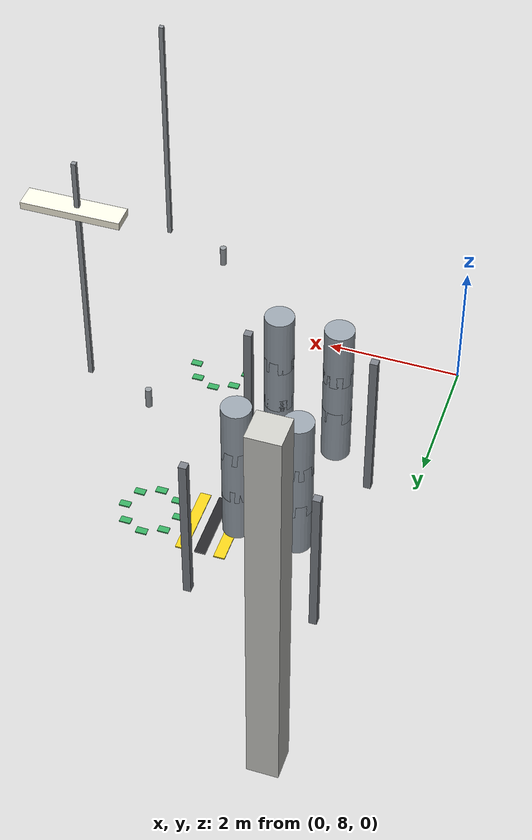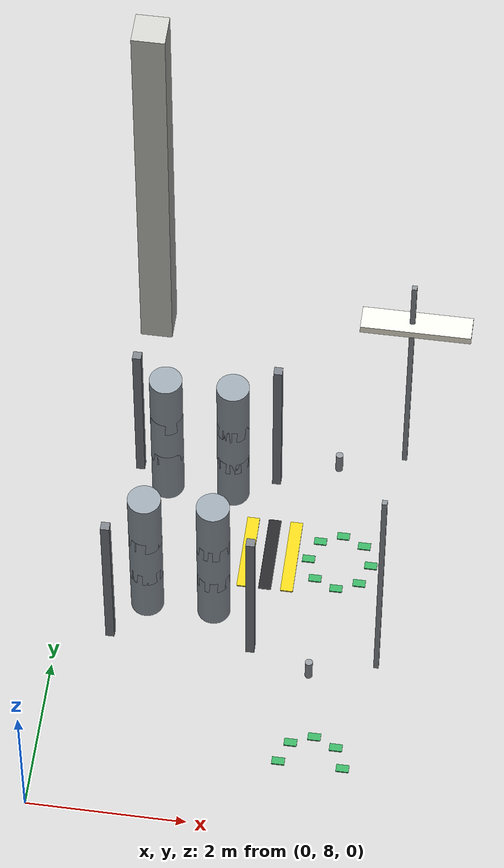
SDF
<sdf version="1.10">
 <world name="textile_mill">
  <model name="col_1">
   <static>true</static>
   <pose>0.550 15.450 3.000 0 0 0</pose>
   <link name="l">
    <collision name="c"><geometry><box><size>0.420 0.420 6.000</size></box></geometry></collision>
    <visual name="v">
     <geometry><box><size>0.420 0.420 6.000</size></box></geometry>
     <material>
      <ambient>0.800 0.800 0.780 1.0</ambient>
      <diffuse>0.800 0.800 0.780 1.0</diffuse>
      <specular>0.18 0.18 0.18 1</specular>
      <pbr><metal><roughness>0.85</roughness><metalness>0.0</metalness></metal></pbr>
     </material>
    </visual>
   </link>
  </model>
  <model name="lamp_0_2">
   <static>true</static>
   <pose>4.200 12.000 5.280 0 0 0</pose>
   <link name="l">
    <collision name="c"><geometry><box><size>1.300 0.300 0.100</size></box></geometry></collision>
    <visual name="v">
     <geometry><box><size>1.300 0.300 0.100</size></box></geometry>
     <material>
      <ambient>1.000 0.980 0.900 1.0</ambient>
      <diffuse>1.000 0.980 0.900 1.0</diffuse>
      <specular>0.18 0.18 0.18 1</specular>
      <pbr><metal><roughness>0.3</roughness><metalness>0.0</metalness></metal></pbr>
     </material>
    </visual>
   </link>
  </model>
  <model name="clnz_carding_2_0">
   <static>true</static>
   <pose>3.350 9.000 2.280 0.0000 0.0000 0.0000</pose>
   <link name="l">
    <collision name="c">
     <geometry><cylinder><radius>0.045</radius><length>0.300</length></cylinder></geometry>
    </collision>
    <visual name="v">
     <geometry><cylinder><radius>0.045</radius><length>0.300</length></cylinder></geometry>
     <material>
      <ambient>0.580 0.600 0.620 1.0</ambient>
      <diffuse>0.580 0.600 0.620 1.0</diffuse>
      <specular>0.18 0.18 0.18 1</specular>
      <pbr><metal><roughness>0.35</roughness><metalness>0.5</metalness></metal></pbr>
     </material>
    </visual>
   </link>
  </model>
  <model name="clnh_carding_2_0">
   <static>true</static>
   <pose>4.150 9.000 4.260 0 0 0</pose>
   <link name="l">
    <collision name="c"><geometry><box><size>0.060 0.060 3.480</size></box></geometry></collision>
    <visual name="v">
     <geometry><box><size>0.060 0.060 3.480</size></box></geometry>
     <material>
      <ambient>0.550 0.570 0.590 1.0</ambient>
      <diffuse>0.550 0.570 0.590 1.0</diffuse>
      <specular>0.18 0.18 0.18 1</specular>
      <pbr><metal><roughness>0.65</roughness><metalness>0.6</metalness></metal></pbr>
     </material>
    </visual>
   </link>
  </model>
  <model name="clnz_carding_3_0">
   <static>true</static>
   <pose>3.350 12.000 2.280 0.0000 0.0000 0.0000</pose>
   <link name="l">
    <collision name="c">
     <geometry><cylinder><radius>0.045</radius><length>0.300</length></cylinder></geometry>
    </collision>
    <visual name="v">
     <geometry><cylinder><radius>0.045</radius><length>0.300</length></cylinder></geometry>
     <material>
      <ambient>0.580 0.600 0.620 1.0</ambient>
      <diffuse>0.580 0.600 0.620 1.0</diffuse>
      <specular>0.18 0.18 0.18 1</specular>
      <pbr><metal><roughness>0.35</roughness><metalness>0.5</metalness></metal></pbr>
     </material>
    </visual>
   </link>
  </model>
  <model name="clnh_carding_3_0">
   <static>true</static>
   <pose>4.150 12.000 4.260 0 0 0</pose>
   <link name="l">
    <collision name="c"><geometry><box><size>0.060 0.060 3.480</size></box></geometry></collision>
    <visual name="v">
     <geometry><box><size>0.060 0.060 3.480</size></box></geometry>
     <material>
      <ambient>0.550 0.570 0.590 1.0</ambient>
      <diffuse>0.550 0.570 0.590 1.0</diffuse>
      <specular>0.18 0.18 0.18 1</specular>
      <pbr><metal><roughness>0.65</roughness><metalness>0.6</metalness></metal></pbr>
     </material>
    </visual>
   </link>
  </model>
  <model name="slot_storage_empty_slot_2_0">
   <static>true</static>
   <pose>3.800 9.000 0.012 0 0 0</pose>
   <link name="l">
    <visual name="v">
     <geometry><box><size>0.160 0.100 0.020</size></box></geometry>
     <material>
      <ambient>0.220 0.680 0.380 1.0</ambient>
      <diffuse>0.220 0.680 0.380 1.0</diffuse>
      <specular>0.18 0.18 0.18 1</specular>
      <pbr><metal><roughness>0.65</roughness><metalness>0.0</metalness></metal></pbr>
     </material>
    </visual>
   </link>
  </model>
  <model name="slot_storage_empty_slot_2_1">
   <static>true</static>
   <pose>3.683 9.283 0.012 0 0 0</pose>
   <link name="l">
    <visual name="v">
     <geometry><box><size>0.160 0.100 0.020</size></box></geometry>
     <material>
      <ambient>0.220 0.680 0.380 1.0</ambient>
      <diffuse>0.220 0.680 0.380 1.0</diffuse>
      <specular>0.18 0.18 0.18 1</specular>
      <pbr><metal><roughness>0.65</roughness><metalness>0.0</metalness></metal></pbr>
     </material>
    </visual>
   </link>
  </model>
  <model name="slot_storage_empty_slot_2_2">
   <static>true</static>
   <pose>3.400 9.400 0.012 0 0 0</pose>
   <link name="l">
    <visual name="v">
     <geometry><box><size>0.160 0.100 0.020</size></box></geometry>
     <material>
      <ambient>0.220 0.680 0.380 1.0</ambient>
      <diffuse>0.220 0.680 0.380 1.0</diffuse>
      <specular>0.18 0.18 0.18 1</specular>
      <pbr><metal><roughness>0.65</roughness><metalness>0.0</metalness></metal></pbr>
     </material>
    </visual>
   </link>
  </model>
  <model name="slot_storage_empty_slot_2_3">
   <static>true</static>
   <pose>3.117 9.283 0.012 0 0 0</pose>
   <link name="l">
    <visual name="v">
     <geometry><box><size>0.160 0.100 0.020</size></box></geometry>
     <material>
      <ambient>0.220 0.680 0.380 1.0</ambient>
      <diffuse>0.220 0.680 0.380 1.0</diffuse>
      <specular>0.18 0.18 0.18 1</specular>
      <pbr><metal><roughness>0.65</roughness><metalness>0.0</metalness></metal></pbr>
     </material>
    </visual>
   </link>
  </model>
  <model name="slot_storage_empty_slot_2_4">
   <static>true</static>
   <pose>3.000 9.000 0.012 0 0 0</pose>
   <link name="l">
    <visual name="v">
     <geometry><box><size>0.160 0.100 0.020</size></box></geometry>
     <material>
      <ambient>0.220 0.680 0.380 1.0</ambient>
      <diffuse>0.220 0.680 0.380 1.0</diffuse>
      <specular>0.18 0.18 0.18 1</specular>
      <pbr><metal><roughness>0.65</roughness><metalness>0.0</metalness></metal></pbr>
     </material>
    </visual>
   </link>
  </model>
  <model name="slot_storage_empty_slot_3_0">
   <static>true</static>
   <pose>3.800 12.000 0.012 0 0 0</pose>
   <link name="l">
    <visual name="v">
     <geometry><box><size>0.160 0.100 0.020</size></box></geometry>
     <material>
      <ambient>0.220 0.680 0.380 1.0</ambient>
      <diffuse>0.220 0.680 0.380 1.0</diffuse>
      <specular>0.18 0.18 0.18 1</specular>
      <pbr><metal><roughness>0.65</roughness><metalness>0.0</metalness></metal></pbr>
     </material>
    </visual>
   </link>
  </model>
  <model name="slot_storage_empty_slot_3_1">
   <static>true</static>
   <pose>3.683 12.283 0.012 0 0 0</pose>
   <link name="l">
    <visual name="v">
     <geometry><box><size>0.160 0.100 0.020</size></box></geometry>
     <material>
      <ambient>0.220 0.680 0.380 1.0</ambient>
      <diffuse>0.220 0.680 0.380 1.0</diffuse>
      <specular>0.18 0.18 0.18 1</specular>
      <pbr><metal><roughness>0.65</roughness><metalness>0.0</metalness></metal></pbr>
     </material>
    </visual>
   </link>
  </model>
  <model name="slot_storage_empty_slot_3_2">
   <static>true</static>
   <pose>3.400 12.400 0.012 0 0 0</pose>
   <link name="l">
    <visual name="v">
     <geometry><box><size>0.160 0.100 0.020</size></box></geometry>
     <material>
      <ambient>0.220 0.680 0.380 1.0</ambient>
      <diffuse>0.220 0.680 0.380 1.0</diffuse>
      <specular>0.18 0.18 0.18 1</specular>
      <pbr><metal><roughness>0.65</roughness><metalness>0.0</metalness></metal></pbr>
     </material>
    </visual>
   </link>
  </model>
  <model name="slot_storage_empty_slot_3_3">
   <static>true</static>
   <pose>3.117 12.283 0.012 0 0 0</pose>
   <link name="l">
    <visual name="v">
     <geometry><box><size>0.160 0.100 0.020</size></box></geometry>
     <material>
      <ambient>0.220 0.680 0.380 1.0</ambient>
      <diffuse>0.220 0.680 0.380 1.0</diffuse>
      <specular>0.18 0.18 0.18 1</specular>
      <pbr><metal><roughness>0.65</roughness><metalness>0.0</metalness></metal></pbr>
     </material>
    </visual>
   </link>
  </model>
  <model name="slot_storage_empty_slot_3_4">
   <static>true</static>
   <pose>3.000 12.000 0.012 0 0 0</pose>
   <link name="l">
    <visual name="v">
     <geometry><box><size>0.160 0.100 0.020</size></box></geometry>
     <material>
      <ambient>0.220 0.680 0.380 1.0</ambient>
      <diffuse>0.220 0.680 0.380 1.0</diffuse>
      <specular>0.18 0.18 0.18 1</specular>
      <pbr><metal><roughness>0.65</roughness><metalness>0.0</metalness></metal></pbr>
     </material>
    </visual>
   </link>
  </model>
  <model name="slot_storage_empty_slot_3_5">
   <static>true</static>
   <pose>3.117 11.717 0.012 0 0 0</pose>
   <link name="l">
    <visual name="v">
     <geometry><box><size>0.160 0.100 0.020</size></box></geometry>
     <material>
      <ambient>0.220 0.680 0.380 1.0</ambient>
      <diffuse>0.220 0.680 0.380 1.0</diffuse>
      <specular>0.18 0.18 0.18 1</specular>
      <pbr><metal><roughness>0.65</roughness><metalness>0.0</metalness></metal></pbr>
     </material>
    </visual>
   </link>
  </model>
  <model name="slot_storage_empty_slot_3_6">
   <static>true</static>
   <pose>3.400 11.600 0.012 0 0 0</pose>
   <link name="l">
    <visual name="v">
     <geometry><box><size>0.160 0.100 0.020</size></box></geometry>
     <material>
      <ambient>0.220 0.680 0.380 1.0</ambient>
      <diffuse>0.220 0.680 0.380 1.0</diffuse>
      <specular>0.18 0.18 0.18 1</specular>
      <pbr><metal><roughness>0.65</roughness><metalness>0.0</metalness></metal></pbr>
     </material>
    </visual>
   </link>
  </model>
  <model name="slot_storage_empty_slot_3_7">
   <static>true</static>
   <pose>3.683 11.717 0.012 0 0 0</pose>
   <link name="l">
    <visual name="v">
     <geometry><box><size>0.160 0.100 0.020</size></box></geometry>
     <material>
      <ambient>0.220 0.680 0.380 1.0</ambient>
      <diffuse>0.220 0.680 0.380 1.0</diffuse>
      <specular>0.18 0.18 0.18 1</specular>
      <pbr><metal><roughness>0.65</roughness><metalness>0.0</metalness></metal></pbr>
     </material>
    </visual>
   </link>
  </model>
  <model name="hz_empty_3_0">
   <static>true</static>
   <pose>2.780 12.000 0.012 0 0 0</pose>
   <link name="l">
    <visual name="v">
     <geometry><box><size>0.160 1.050 0.020</size></box></geometry>
     <material>
      <ambient>0.950 0.820 0.100 1.0</ambient>
      <diffuse>0.950 0.820 0.100 1.0</diffuse>
      <specular>0.18 0.18 0.18 1</specular>
      <pbr><metal><roughness>0.65</roughness><metalness>0.0</metalness></metal></pbr>
     </material>
    </visual>
   </link>
  </model>
  <model name="hz_empty_3_1">
   <static>true</static>
   <pose>2.500 12.000 0.012 0 0 0</pose>
   <link name="l">
    <visual name="v">
     <geometry><box><size>0.160 1.050 0.020</size></box></geometry>
     <material>
      <ambient>0.150 0.150 0.160 1.0</ambient>
      <diffuse>0.150 0.150 0.160 1.0</diffuse>
      <specular>0.18 0.18 0.18 1</specular>
      <pbr><metal><roughness>0.65</roughness><metalness>0.0</metalness></metal></pbr>
     </material>
    </visual>
   </link>
  </model>
  <model name="hz_empty_3_2">
   <static>true</static>
   <pose>2.220 12.000 0.012 0 0 0</pose>
   <link name="l">
    <visual name="v">
     <geometry><box><size>0.160 1.050 0.020</size></box></geometry>
     <material>
      <ambient>0.950 0.820 0.100 1.0</ambient>
      <diffuse>0.950 0.820 0.100 1.0</diffuse>
      <specular>0.18 0.18 0.18 1</specular>
      <pbr><metal><roughness>0.65</roughness><metalness>0.0</metalness></metal></pbr>
     </material>
    </visual>
   </link>
  </model>
  <model name="rack_empty_can_0_4_a">
   <static>true</static>
   <pose>1.132 10.670 1.120 0.0000 0.0000 0.0000</pose>
   <link name="l">
    <collision name="c">
     <geometry><cylinder><radius>0.205</radius><length>0.900</length></cylinder></geometry>
    </collision>
    <visual name="v">
     <geometry><cylinder><radius>0.205</radius><length>0.900</length></cylinder></geometry>
     <material>
      <ambient>0.600 0.640 0.680 1.0</ambient>
      <diffuse>0.600 0.640 0.680 1.0</diffuse>
      <specular>0.18 0.18 0.18 1</specular>
      <pbr><metal><roughness>0.6</roughness><metalness>0.0</metalness></metal></pbr>
     </material>
    </visual>
   </link>
  </model>
  <model name="rack_empty_can_0_4_b">
   <static>true</static>
   <pose>1.968 10.670 1.120 0.0000 0.0000 0.0000</pose>
   <link name="l">
    <collision name="c">
     <geometry><cylinder><radius>0.205</radius><length>0.900</length></cylinder></geometry>
    </collision>
    <visual name="v">
     <geometry><cylinder><radius>0.205</radius><length>0.900</length></cylinder></geometry>
     <material>
      <ambient>0.600 0.640 0.680 1.0</ambient>
      <diffuse>0.600 0.640 0.680 1.0</diffuse>
      <specular>0.18 0.18 0.18 1</specular>
      <pbr><metal><roughness>0.6</roughness><metalness>0.0</metalness></metal></pbr>
     </material>
    </visual>
   </link>
  </model>
  <model name="rack_empty_can_0_5_a">
   <static>true</static>
   <pose>1.132 12.450 1.120 0.0000 0.0000 0.0000</pose>
   <link name="l">
    <collision name="c">
     <geometry><cylinder><radius>0.205</radius><length>0.900</length></cylinder></geometry>
    </collision>
    <visual name="v">
     <geometry><cylinder><radius>0.205</radius><length>0.900</length></cylinder></geometry>
     <material>
      <ambient>0.600 0.640 0.680 1.0</ambient>
      <diffuse>0.600 0.640 0.680 1.0</diffuse>
      <specular>0.18 0.18 0.18 1</specular>
      <pbr><metal><roughness>0.6</roughness><metalness>0.0</metalness></metal></pbr>
     </material>
    </visual>
   </link>
  </model>
  <model name="rack_empty_can_0_5_b">
   <static>true</static>
   <pose>1.968 12.450 1.120 0.0000 0.0000 0.0000</pose>
   <link name="l">
    <collision name="c">
     <geometry><cylinder><radius>0.205</radius><length>0.900</length></cylinder></geometry>
    </collision>
    <visual name="v">
     <geometry><cylinder><radius>0.205</radius><length>0.900</length></cylinder></geometry>
     <material>
      <ambient>0.600 0.640 0.680 1.0</ambient>
      <diffuse>0.600 0.640 0.680 1.0</diffuse>
      <specular>0.18 0.18 0.18 1</specular>
      <pbr><metal><roughness>0.6</roughness><metalness>0.0</metalness></metal></pbr>
     </material>
    </visual>
   </link>
  </model>
  <model name="rack_empty_can_1_4_a">
   <static>true</static>
   <pose>1.132 10.670 1.820 0.0000 0.0000 0.0000</pose>
   <link name="l">
    <collision name="c">
     <geometry><cylinder><radius>0.205</radius><length>0.900</length></cylinder></geometry>
    </collision>
    <visual name="v">
     <geometry><cylinder><radius>0.205</radius><length>0.900</length></cylinder></geometry>
     <material>
      <ambient>0.600 0.640 0.680 1.0</ambient>
      <diffuse>0.600 0.640 0.680 1.0</diffuse>
      <specular>0.18 0.18 0.18 1</specular>
      <pbr><metal><roughness>0.6</roughness><metalness>0.0</metalness></metal></pbr>
     </material>
    </visual>
   </link>
  </model>
  <model name="rack_empty_can_1_4_b">
   <static>true</static>
   <pose>1.968 10.670 1.820 0.0000 0.0000 0.0000</pose>
   <link name="l">
    <collision name="c">
     <geometry><cylinder><radius>0.205</radius><length>0.900</length></cylinder></geometry>
    </collision>
    <visual name="v">
     <geometry><cylinder><radius>0.205</radius><length>0.900</length></cylinder></geometry>
     <material>
      <ambient>0.600 0.640 0.680 1.0</ambient>
      <diffuse>0.600 0.640 0.680 1.0</diffuse>
      <specular>0.18 0.18 0.18 1</specular>
      <pbr><metal><roughness>0.6</roughness><metalness>0.0</metalness></metal></pbr>
     </material>
    </visual>
   </link>
  </model>
  <model name="rack_empty_can_1_5_a">
   <static>true</static>
   <pose>1.132 12.450 1.820 0.0000 0.0000 0.0000</pose>
   <link name="l">
    <collision name="c">
     <geometry><cylinder><radius>0.205</radius><length>0.900</length></cylinder></geometry>
    </collision>
    <visual name="v">
     <geometry><cylinder><radius>0.205</radius><length>0.900</length></cylinder></geometry>
     <material>
      <ambient>0.600 0.640 0.680 1.0</ambient>
      <diffuse>0.600 0.640 0.680 1.0</diffuse>
      <specular>0.18 0.18 0.18 1</specular>
      <pbr><metal><roughness>0.6</roughness><metalness>0.0</metalness></metal></pbr>
     </material>
    </visual>
   </link>
  </model>
  <model name="rack_empty_can_1_5_b">
   <static>true</static>
   <pose>1.968 12.450 1.820 0.0000 0.0000 0.0000</pose>
   <link name="l">
    <collision name="c">
     <geometry><cylinder><radius>0.205</radius><length>0.900</length></cylinder></geometry>
    </collision>
    <visual name="v">
     <geometry><cylinder><radius>0.205</radius><length>0.900</length></cylinder></geometry>
     <material>
      <ambient>0.600 0.640 0.680 1.0</ambient>
      <diffuse>0.600 0.640 0.680 1.0</diffuse>
      <specular>0.18 0.18 0.18 1</specular>
      <pbr><metal><roughness>0.6</roughness><metalness>0.0</metalness></metal></pbr>
     </material>
    </visual>
   </link>
  </model>
  <model name="rack_empty_can_2_4_a">
   <static>true</static>
   <pose>1.132 10.670 2.520 0.0000 0.0000 0.0000</pose>
   <link name="l">
    <collision name="c">
     <geometry><cylinder><radius>0.205</radius><length>0.900</length></cylinder></geometry>
    </collision>
    <visual name="v">
     <geometry><cylinder><radius>0.205</radius><length>0.900</length></cylinder></geometry>
     <material>
      <ambient>0.600 0.640 0.680 1.0</ambient>
      <diffuse>0.600 0.640 0.680 1.0</diffuse>
      <specular>0.18 0.18 0.18 1</specular>
      <pbr><metal><roughness>0.6</roughness><metalness>0.0</metalness></metal></pbr>
     </material>
    </visual>
   </link>
  </model>
  <model name="rack_empty_can_2_4_b">
   <static>true</static>
   <pose>1.968 10.670 2.520 0.0000 0.0000 0.0000</pose>
   <link name="l">
    <collision name="c">
     <geometry><cylinder><radius>0.205</radius><length>0.900</length></cylinder></geometry>
    </collision>
    <visual name="v">
     <geometry><cylinder><radius>0.205</radius><length>0.900</length></cylinder></geometry>
     <material>
      <ambient>0.600 0.640 0.680 1.0</ambient>
      <diffuse>0.600 0.640 0.680 1.0</diffuse>
      <specular>0.18 0.18 0.18 1</specular>
      <pbr><metal><roughness>0.6</roughness><metalness>0.0</metalness></metal></pbr>
     </material>
    </visual>
   </link>
  </model>
  <model name="rack_empty_can_2_5_a">
   <static>true</static>
   <pose>1.132 12.450 2.520 0.0000 0.0000 0.0000</pose>
   <link name="l">
    <collision name="c">
     <geometry><cylinder><radius>0.205</radius><length>0.900</length></cylinder></geometry>
    </collision>
    <visual name="v">
     <geometry><cylinder><radius>0.205</radius><length>0.900</length></cylinder></geometry>
     <material>
      <ambient>0.600 0.640 0.680 1.0</ambient>
      <diffuse>0.600 0.640 0.680 1.0</diffuse>
      <specular>0.18 0.18 0.18 1</specular>
      <pbr><metal><roughness>0.6</roughness><metalness>0.0</metalness></metal></pbr>
     </material>
    </visual>
   </link>
  </model>
  <model name="rack_empty_can_2_5_b">
   <static>true</static>
   <pose>1.968 12.450 2.520 0.0000 0.0000 0.0000</pose>
   <link name="l">
    <collision name="c">
     <geometry><cylinder><radius>0.205</radius><length>0.900</length></cylinder></geometry>
    </collision>
    <visual name="v">
     <geometry><cylinder><radius>0.205</radius><length>0.900</length></cylinder></geometry>
     <material>
      <ambient>0.600 0.640 0.680 1.0</ambient>
      <diffuse>0.600 0.640 0.680 1.0</diffuse>
      <specular>0.18 0.18 0.18 1</specular>
      <pbr><metal><roughness>0.6</roughness><metalness>0.0</metalness></metal></pbr>
     </material>
    </visual>
   </link>
  </model>
  <model name="rack_empty_post_3_a">
   <static>true</static>
   <pose>0.660 10.575 1.220 0 0 0</pose>
   <link name="l">
    <collision name="c"><geometry><box><size>0.110 0.110 2.440</size></box></geometry></collision>
    <visual name="v">
     <geometry><box><size>0.110 0.110 2.440</size></box></geometry>
     <material>
      <ambient>0.480 0.500 0.530 1.0</ambient>
      <diffuse>0.480 0.500 0.530 1.0</diffuse>
      <specular>0.18 0.18 0.18 1</specular>
      <pbr><metal><roughness>0.65</roughness><metalness>0.5</metalness></metal></pbr>
     </material>
    </visual>
   </link>
  </model>
  <model name="rack_empty_post_3_b">
   <static>true</static>
   <pose>2.440 10.575 1.220 0 0 0</pose>
   <link name="l">
    <collision name="c"><geometry><box><size>0.110 0.110 2.440</size></box></geometry></collision>
    <visual name="v">
     <geometry><box><size>0.110 0.110 2.440</size></box></geometry>
     <material>
      <ambient>0.480 0.500 0.530 1.0</ambient>
      <diffuse>0.480 0.500 0.530 1.0</diffuse>
      <specular>0.18 0.18 0.18 1</specular>
      <pbr><metal><roughness>0.65</roughness><metalness>0.5</metalness></metal></pbr>
     </material>
    </visual>
   </link>
  </model>
  <model name="rack_empty_post_4_a">
   <static>true</static>
   <pose>0.660 13.150 1.220 0 0 0</pose>
   <link name="l">
    <collision name="c"><geometry><box><size>0.110 0.110 2.440</size></box></geometry></collision>
    <visual name="v">
     <geometry><box><size>0.110 0.110 2.440</size></box></geometry>
     <material>
      <ambient>0.480 0.500 0.530 1.0</ambient>
      <diffuse>0.480 0.500 0.530 1.0</diffuse>
      <specular>0.18 0.18 0.18 1</specular>
      <pbr><metal><roughness>0.65</roughness><metalness>0.5</metalness></metal></pbr>
     </material>
    </visual>
   </link>
  </model>
  <model name="rack_empty_post_4_b">
   <static>true</static>
   <pose>2.440 13.150 1.220 0 0 0</pose>
   <link name="l">
    <collision name="c"><geometry><box><size>0.110 0.110 2.440</size></box></geometry></collision>
    <visual name="v">
     <geometry><box><size>0.110 0.110 2.440</size></box></geometry>
     <material>
      <ambient>0.480 0.500 0.530 1.0</ambient>
      <diffuse>0.480 0.500 0.530 1.0</diffuse>
      <specular>0.18 0.18 0.18 1</specular>
      <pbr><metal><roughness>0.65</roughness><metalness>0.5</metalness></metal></pbr>
     </material>
    </visual>
   </link>
  </model>
  <model name="view_line">
   <static>true</static>
   <pose>2.8 10.5 1.9 0 0.0600 0.0800</pose>
   <link name="l">
    <sensor name="cam" type="camera">
     <camera>
      <horizontal_fov>1.3</horizontal_fov>
      <image><width>1280</width><height>720</height></image>
      <clip><near>0.1</near><far>200</far></clip>
     </camera>
     <always_on>0</always_on>
     <update_rate>2</update_rate>
     <visualize>false</visualize>
     <topic>view_line/image</topic>
    </sensor>
   </link>
  </model>
 </world>
</sdf>
